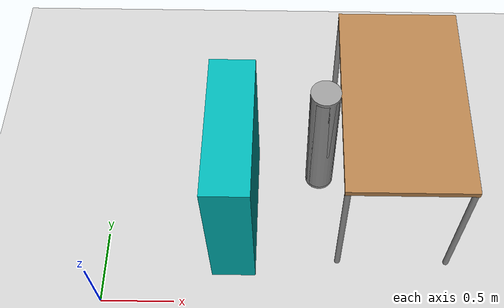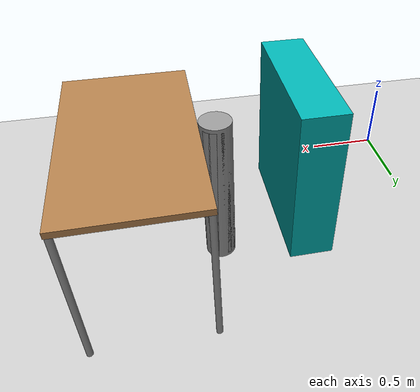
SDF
<sdf version="1.6">
 <world name="default">
  <plugin name="ros_link_attacher_plugin" filename="libgazebo_ros_link_attacher.so"/>
  <light name="sun" type="directional">
   <pose>0 0 10 0 -0 0</pose>
   <diffuse>0.8 0.8 0.8 1</diffuse>
   <specular>0.1 0.1 0.1 1</specular>
   <attenuation>
    <range>1000</range>
    <constant>0.9</constant>
    <linear>0.01</linear>
    <quadratic>0.001</quadratic>
   </attenuation>
   <direction>-0.5 0.5 -1</direction>
  </light>
  <model name="ground_plane">
   <pose>1 0 0 0 -0 0</pose>
   <static>1</static>
   <link name="link">
    <collision name="collision">
     <geometry><plane><normal>0 0 1</normal><size>100 100</size></plane></geometry>
     <surface><friction><ode><mu>100</mu><mu2>50</mu2></ode></friction></surface>
    </collision>
    <visual name="visual">
     <cast_shadows>0</cast_shadows>
     <geometry><plane><normal>0 0 1</normal><size>100 100</size></plane></geometry>
     <material>
      <script><uri>file://media/materials/scripts/gazebo.material</uri><name>Gazebo/Grey</name></script>
     </material>
    </visual>
   </link>
  </model>
  <gravity>0 0 -9.8</gravity>
  <magnetic_field>6e-06 2.3e-05 -4.2e-05</magnetic_field>
  <atmosphere type="adiabatic"/>
  <physics name="default_physics" default="0" type="ode">
   <max_step_size>0.001</max_step_size>
   <real_time_factor>1</real_time_factor>
   <real_time_update_rate>1000</real_time_update_rate>
  </physics>
  <scene><ambient>0.4 0.4 0.4 1</ambient><background>0.7 0.7 0.7 1</background><shadows>1</shadows></scene>
  <spherical_coordinates>
   <surface_model>EARTH_WGS84</surface_model>
   <latitude_deg>0</latitude_deg>
   <longitude_deg>0</longitude_deg>
   <elevation>0</elevation>
   <heading_deg>0</heading_deg>
  </spherical_coordinates>
  <model name="table">
   <static>1</static>
   <link name="link">
    <collision name="surface">
     <pose>0 0 1 0 -0 0</pose>
     <geometry><box><size>1.5 0.8 0.03</size></box></geometry>
     <surface><friction><ode><mu>0.6</mu><mu2>0.6</mu2></ode></friction></surface>
    </collision>
    <visual name="visual1">
     <pose>0 0 1 0 -0 0</pose>
     <geometry><box><size>1.4 0.8 0.04</size></box></geometry>
     <material>
      <script><uri>file://media/materials/scripts/gazebo.material</uri><name>Gazebo/Wood</name></script>
     </material>
    </visual>
    <collision name="front_left_leg">
     <pose>0.68 0.38 0.5 0 -0 0</pose>
     <geometry><cylinder><radius>0.02</radius><length>1</length></cylinder></geometry>
    </collision>
    <visual name="front_left_leg">
     <pose>0.68 0.38 0.5 0 -0 0</pose>
     <geometry><cylinder><radius>0.02</radius><length>1</length></cylinder></geometry>
     <material>
      <script><uri>file://media/materials/scripts/gazebo.material</uri><name>Gazebo/Grey</name></script>
     </material>
    </visual>
    <collision name="front_right_leg">
     <pose>0.68 -0.38 0.5 0 -0 0</pose>
     <geometry><cylinder><radius>0.02</radius><length>1</length></cylinder></geometry>
    </collision>
    <visual name="front_right_leg">
     <pose>0.68 -0.38 0.5 0 -0 0</pose>
     <geometry><cylinder><radius>0.02</radius><length>1</length></cylinder></geometry>
     <material>
      <script><uri>file://media/materials/scripts/gazebo.material</uri><name>Gazebo/Grey</name></script>
     </material>
    </visual>
    <collision name="back_right_leg">
     <pose>-0.68 -0.38 0.5 0 -0 0</pose>
     <geometry><cylinder><radius>0.02</radius><length>1</length></cylinder></geometry>
    </collision>
    <visual name="back_right_leg">
     <pose>-0.68 -0.38 0.5 0 -0 0</pose>
     <geometry><cylinder><radius>0.02</radius><length>1</length></cylinder></geometry>
     <material>
      <script><uri>file://media/materials/scripts/gazebo.material</uri><name>Gazebo/Grey</name></script>
     </material>
    </visual>
    <collision name="back_left_leg">
     <pose>-0.68 0.38 0.5 0 -0 0</pose>
     <geometry><cylinder><radius>0.02</radius><length>1</length></cylinder></geometry>
    </collision>
    <visual name="back_left_leg">
     <pose>-0.68 0.38 0.5 0 -0 0</pose>
     <geometry><cylinder><radius>0.02</radius><length>1</length></cylinder></geometry>
     <material>
      <script><uri>file://media/materials/scripts/gazebo.material</uri><name>Gazebo/Grey</name></script>
     </material>
    </visual>
    <inertial>
     <inertia><ixx>1</ixx><ixy>0</ixy><ixz>0</ixz><iyy>1</iyy><iyz>0</iyz><izz>1</izz></inertia>
     <mass>1</mass>
    </inertial>
   </link>
   <pose>2 1 0 0 0 -1.57</pose>
  </model>
  <model name="Picking_base">
   <static>1</static>
   <link name="link">
    <inertial>
     <mass>1</mass>
     <inertia>
      <ixx>0.166667</ixx>
      <ixy>0</ixy>
      <ixz>0</ixz>
      <iyy>0.166667</iyy>
      <iyz>0</iyz>
      <izz>0.166667</izz>
     </inertia>
    </inertial>
    <visual name="visual">
     <geometry><box><size>0.3 1 1.12</size></box></geometry>
     <material>
      <script><name>Gazebo/Grey</name><uri>file://media/materials/scripts/gazebo.material</uri></script>
      <ambient>0 0.3 0.3 1</ambient>
      <diffuse>0 0.7 0.7 1</diffuse>
      <specular>0 0.01 0.01 1</specular>
      <emissive>0 0 0 1</emissive>
      <shader type="vertex"><normal_map>__default__</normal_map></shader>
     </material>
    </visual>
    <collision name="collision">
     <geometry><box><size>0.296101 1 1.13084</size></box></geometry>
     <surface>
      <friction>
       <ode><mu>1</mu><mu2>1</mu2><fdir1>0 0 0</fdir1><slip1>0</slip1><slip2>0</slip2></ode>
       <torsional>
        <coefficient>1</coefficient>
        <patch_radius>0</patch_radius>
        <surface_radius>0</surface_radius>
        <use_patch_radius>1</use_patch_radius>
        <ode><slip>0</slip></ode>
       </torsional>
      </friction>
      <bounce><restitution_coefficient>0</restitution_coefficient><threshold>1e+06</threshold></bounce>
      <contact>
       <collide_without_contact>0</collide_without_contact>
       <collide_without_contact_bitmask>1</collide_without_contact_bitmask>
       <collide_bitmask>1</collide_bitmask>
       <ode>
        <soft_cfm>0</soft_cfm>
        <soft_erp>0.2</soft_erp>
        <kp>1e+13</kp>
        <kd>1</kd>
        <max_vel>0.01</max_vel>
        <min_depth>0</min_depth>
       </ode>
       <bullet>
        <split_impulse>1</split_impulse>
        <split_impulse_penetration_threshold>-0.01</split_impulse_penetration_threshold>
        <soft_cfm>0</soft_cfm>
        <soft_erp>0.2</soft_erp>
        <kp>1e+13</kp>
        <kd>1</kd>
       </bullet>
      </contact>
     </surface>
    </collision>
   </link>
   <static>0</static>
   <pose>0.900054 0.700003 0.565419 0 0 -1.7e-05</pose>
  </model>
  <model name="robot_stand_base">
   <static>1</static>
   <link name="link">
    <inertial>
     <mass>0.0403767</mass>
     <inertia>
      <ixx>0.00346661</ixx>
      <ixy>0</ixy>
      <ixz>0</ixz>
      <iyy>0.00346661</iyy>
      <iyz>0</iyz>
      <izz>0.00020378</izz>
     </inertia>
    </inertial>
    <gravity>0</gravity>
    <visual name="ModelPreview_3::link::visual_1">
     <geometry><cylinder><radius>0.1</radius><length>1</length></cylinder></geometry>
     <material>
      <script><name>Gazebo/Grey</name><uri>file://media/materials/scripts/gazebo.material</uri></script>
      <ambient>0.3 0.3 0.3 1</ambient>
      <diffuse>0.7 0.7 0.7 1</diffuse>
      <specular>0.01 0.01 0.01 1</specular>
      <emissive>0 0 0 1</emissive>
      <shader type="vertex"><normal_map>__default__</normal_map></shader>
     </material>
    </visual>
    <visual name="visual">
     <geometry><cylinder><radius>0.1</radius><length>1.05</length></cylinder></geometry>
     <material>
      <script><name>Gazebo/Grey</name><uri>file://media/materials/scripts/gazebo.material</uri></script>
      <ambient>0.3 0.3 0.3 1</ambient>
      <diffuse>0.7 0.7 0.7 1</diffuse>
      <specular>0.01 0.01 0.01 1</specular>
      <emissive>0 0 0 1</emissive>
      <shader type="vertex"><normal_map>__default__</normal_map></shader>
     </material>
    </visual>
    <collision name="collision">
     <geometry><cylinder><radius>0.10047</radius><length>1</length></cylinder></geometry>
     <surface>
      <friction>
       <ode><mu>1</mu><mu2>1</mu2><fdir1>0 0 0</fdir1><slip1>0</slip1><slip2>0</slip2></ode>
       <torsional>
        <coefficient>1</coefficient>
        <patch_radius>0</patch_radius>
        <surface_radius>0</surface_radius>
        <use_patch_radius>1</use_patch_radius>
        <ode><slip>0</slip></ode>
       </torsional>
      </friction>
      <bounce><restitution_coefficient>0</restitution_coefficient><threshold>1e+06</threshold></bounce>
      <contact>
       <collide_without_contact>0</collide_without_contact>
       <collide_without_contact_bitmask>1</collide_without_contact_bitmask>
       <collide_bitmask>1</collide_bitmask>
       <ode>
        <soft_cfm>0</soft_cfm>
        <soft_erp>0.2</soft_erp>
        <kp>1e+13</kp>
        <kd>1</kd>
        <max_vel>0.01</max_vel>
        <min_depth>0</min_depth>
       </ode>
       <bullet>
        <split_impulse>1</split_impulse>
        <split_impulse_penetration_threshold>-0.01</split_impulse_penetration_threshold>
        <soft_cfm>0</soft_cfm>
        <soft_erp>0.2</soft_erp>
        <kp>1e+13</kp>
        <kd>1</kd>
       </bullet>
      </contact>
     </surface>
    </collision>
   </link>
   <static>0</static>
   <pose>1.5 1 0.525 0 -0 0</pose>
  </model>
 </world>
</sdf>
